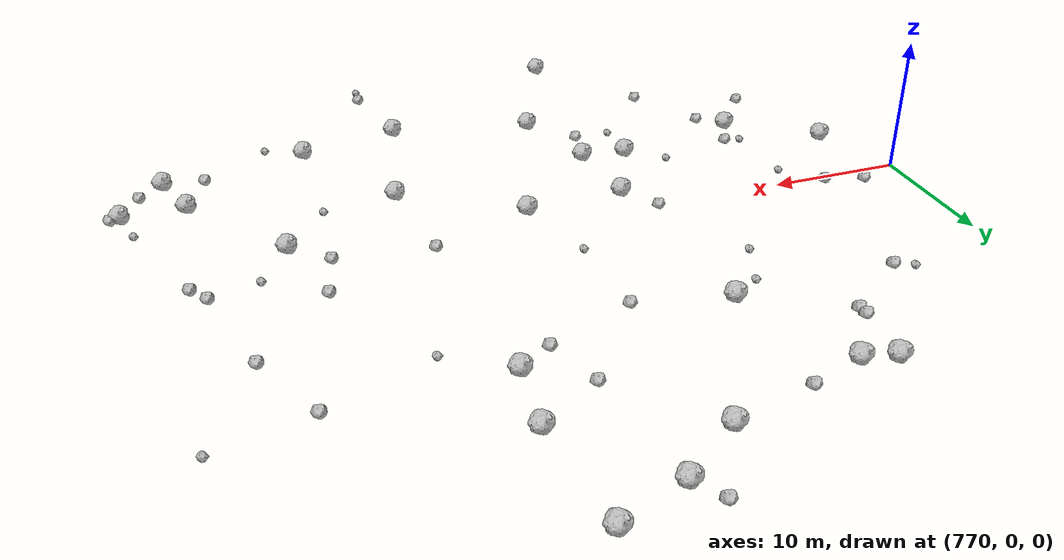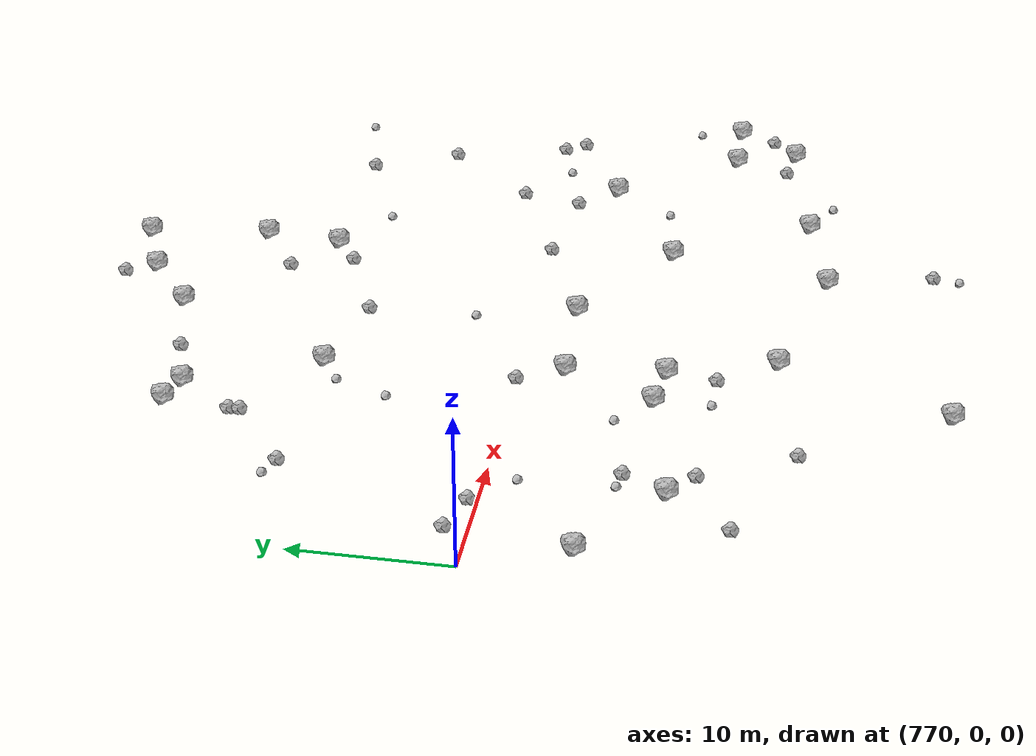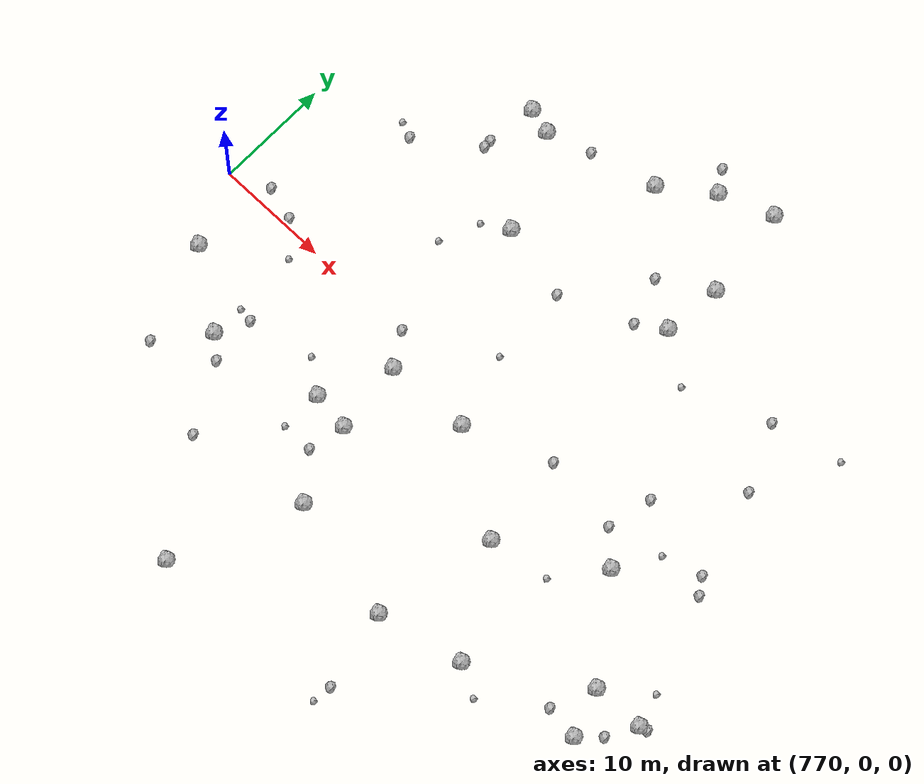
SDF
<sdf version="1.6">
 <world name="default">
  <include><uri>model://sun</uri></include>
  <model name="rock1_20_4">
   <include><uri>model://rock1</uri><pose>799.1491219017246 -2.3934621437173362 0.5 0 0 0</pose></include>
  </model>
  <model name="rock1_20_5">
   <include><uri>model://rock1</uri><pose>772.6753210773013 -6.252682493696408 0.5 0 0 0</pose></include>
  </model>
  <model name="rock1_20_6">
   <include><uri>model://rock1</uri><pose>790.2510768373835 12.614163299350565 0.5 0 0 0</pose></include>
  </model>
  <model name="rock1_20_7">
   <include><uri>model://rock1</uri><pose>822.3680527756914 -10.783972225373827 0.5 0 0 0</pose></include>
  </model>
  <model name="rock1_20_8">
   <include><uri>model://rock1</uri><pose>794.576683043204 -16.082094535818506 0.5 0 0 0</pose></include>
  </model>
  <model name="rock1_20_9">
   <include><uri>model://rock1</uri><pose>805.0141491739953 28.587296533813607 0.5 0 0 0</pose></include>
  </model>
  <model name="rock1_20_10">
   <include><uri>model://rock1</uri><pose>784.1538048964447 21.433509663834243 0.5 0 0 0</pose></include>
  </model>
  <model name="rock1_20_11">
   <include><uri>model://rock1</uri><pose>789.972738059598 -27.199220885884 0.5 0 0 0</pose></include>
  </model>
  <model name="rock1_20_12">
   <include><uri>model://rock1</uri><pose>805.4428808317751 -18.49363414099647 0.5 0 0 0</pose></include>
  </model>
  <model name="rock1_20_13">
   <include><uri>model://rock1</uri><pose>796.1400771503448 23.64920467611492 0.5 0 0 0</pose></include>
  </model>
  <model name="rock1_20_14">
   <include><uri>model://rock1</uri><pose>786.400818974506 20.85896780741563 0.5 0 0 0</pose></include>
  </model>
  <model name="rock1_20_15">
   <include><uri>model://rock1</uri><pose>788.8972647602304 -8.76240055967427 0.5 0 0 0</pose></include>
  </model>
  <model name="rock1_20_16">
   <include><uri>model://rock1</uri><pose>805.5365417819917 15.310476897684993 0.5 0 0 0</pose></include>
  </model>
  <model name="rock1_20_17">
   <include><uri>model://rock1</uri><pose>792.3042449638617 -9.175664166350373 0.5 0 0 0</pose></include>
  </model>
  <model name="rock1_20_18">
   <include><uri>model://rock1</uri><pose>813.048252260186 -16.76143798608308 0.5 0 0 0</pose></include>
  </model>
  <model name="rock1_20_19">
   <include><uri>model://rock1</uri><pose>806.0516907539798 20.452485762880833 0.5 0 0 0</pose></include>
  </model>
  <model name="rock1_20_20">
   <include><uri>model://rock1</uri><pose>791.6842016666219 -2.7735777149483063 0.5 0 0 0</pose></include>
  </model>
  <model name="rock1_20_21">
   <include><uri>model://rock1</uri><pose>826.9929776865121 -10.685162113571828 0.5 0 0 0</pose></include>
  </model>
  <model name="rock1_20_22">
   <include><uri>model://rock1</uri><pose>823.8311477560957 -14.946857969456646 0.5 0 0 0</pose></include>
  </model>
  <model name="rock1_20_23">
   <include><uri>model://rock1</uri><pose>807.656636740883 -7.7514503473701275 0.5 0 0 0</pose></include>
  </model>
  <model name="rock1_20_24">
   <include><uri>model://rock1</uri><pose>779.0131156321492 -10.786329209195454 0.5 0 0 0</pose></include>
  </model>
  <model name="rock1_20_25">
   <include><uri>model://rock1</uri><pose>800.3566935184767 26.79476758541165 0.5 0 0 0</pose></include>
  </model>
  <model name="rock1_20_26">
   <include><uri>model://rock1</uri><pose>816.2990882341488 -2.7538254271999065 0.5 0 0 0</pose></include>
  </model>
  <model name="rock2_20_0">
   <include><uri>model://rock2</uri><pose>783.9163517797299 -18.14471807687179 0.3 0 0 0</pose></include>
  </model>
  <model name="rock2_20_1">
   <include><uri>model://rock2</uri><pose>822.9361214908649 0.5692455004078987 0.3 0 0 0</pose></include>
  </model>
  <model name="rock2_20_2">
   <include><uri>model://rock2</uri><pose>806.9030221156377 -25.50506366368615 0.3 0 0 0</pose></include>
  </model>
  <model name="rock2_20_3">
   <include><uri>model://rock2</uri><pose>799.0617460093499 28.64985834732589 0.3 0 0 0</pose></include>
  </model>
  <model name="rock2_20_4">
   <include><uri>model://rock2</uri><pose>775.6805192422639 -14.884488370626393 0.3 0 0 0</pose></include>
  </model>
  <model name="rock2_20_5">
   <include><uri>model://rock2</uri><pose>790.2549667031303 22.14487358922056 0.3 0 0 0</pose></include>
  </model>
  <model name="rock2_20_6">
   <include><uri>model://rock2</uri><pose>791.6008847700604 -12.445773118336472 0.3 0 0 0</pose></include>
  </model>
  <model name="rock2_20_7">
   <include><uri>model://rock2</uri><pose>803.1512809419252 13.735484457370845 0.3 0 0 0</pose></include>
  </model>
  <model name="rock2_20_8">
   <include><uri>model://rock2</uri><pose>827.627296890441 -10.459406425023236 0.3 0 0 0</pose></include>
  </model>
  <model name="rock2_20_9">
   <include><uri>model://rock2</uri><pose>783.4890290223618 17.085213285548996 0.3 0 0 0</pose></include>
  </model>
  <model name="rock2_20_10">
   <include><uri>model://rock2</uri><pose>821.9444439284877 1.9575924068193977 0.3 0 0 0</pose></include>
  </model>
  <model name="rock2_20_11">
   <include><uri>model://rock2</uri><pose>796.8603078349934 11.169382791526289 0.3 0 0 0</pose></include>
  </model>
  <model name="rock2_20_12">
   <include><uri>model://rock2</uri><pose>819.827185892606 9.727147898308097 0.3 0 0 0</pose></include>
  </model>
  <model name="rock2_20_13">
   <include><uri>model://rock2</uri><pose>776.3212426045793 0.6132348091997777 0.3 0 0 0</pose></include>
  </model>
  <model name="rock2_20_14">
   <include><uri>model://rock2</uri><pose>806.6685747959569 0.535127500976099 0.3 0 0 0</pose></include>
  </model>
  <model name="rock2_20_15">
   <include><uri>model://rock2</uri><pose>778.4729449175533 12.65950435413918 0.3 0 0 0</pose></include>
  </model>
  <model name="rock2_20_16">
   <include><uri>model://rock2</uri><pose>817.1290391165395 15.355602198362803 0.3 0 0 0</pose></include>
  </model>
  <model name="rock2_20_17">
   <include><uri>model://rock2</uri><pose>814.5340310261396 3.727721874288136 0.3 0 0 0</pose></include>
  </model>
  <model name="rock2_20_18">
   <include><uri>model://rock2</uri><pose>801.6942113442834 17.788949881446563 0.3 0 0 0</pose></include>
  </model>
  <model name="rock2_20_19">
   <include><uri>model://rock2</uri><pose>773.3907185246103 1.4774809537102271 0.3 0 0 0</pose></include>
  </model>
  <model name="rock2_20_20">
   <include><uri>model://rock2</uri><pose>783.5302764954617 16.37088720928047 0.3 0 0 0</pose></include>
  </model>
  <model name="rock2_20_21">
   <include><uri>model://rock2</uri><pose>813.66833471278 -0.27161490991575477 0.3 0 0 0</pose></include>
  </model>
  <model name="rock2_20_22">
   <include><uri>model://rock2</uri><pose>825.543592777459 -13.235041377762531 0.3 0 0 0</pose></include>
  </model>
  <model name="rock2_20_23">
   <include><uri>model://rock2</uri><pose>780.7901027735298 -12.3356474795774 0.3 0 0 0</pose></include>
  </model>
  <model name="rock2_20_24">
   <include><uri>model://rock2</uri><pose>780.354159824715 -7.975553405307998 0.3 0 0 0</pose></include>
  </model>
  <model name="rock2_20_25">
   <include><uri>model://rock2</uri><pose>820.752693958989 -14.532296609090194 0.3 0 0 0</pose></include>
  </model>
  <model name="rock2_20_26">
   <include><uri>model://rock2</uri><pose>789.8640392247152 0.10248453407281488 0.3 0 0 0</pose></include>
  </model>
  <model name="rock3_20_0">
   <include><uri>model://rock3</uri><pose>806.7189494580853 -27.302327423662092 0.2 0 0 0</pose></include>
  </model>
  <model name="rock3_20_1">
   <include><uri>model://rock3</uri><pose>777.0858066147928 13.188229375693481 0.2 0 0 0</pose></include>
  </model>
  <model name="rock3_20_2">
   <include><uri>model://rock3</uri><pose>815.8011697068965 -18.249798667033808 0.2 0 0 0</pose></include>
  </model>
  <model name="rock3_20_3">
   <include><uri>model://rock3</uri><pose>779.0593672732733 -7.8171004408946985 0.2 0 0 0</pose></include>
  </model>
  <model name="rock3_20_4">
   <include><uri>model://rock3</uri><pose>813.0629892590833 -6.941099773435553 0.2 0 0 0</pose></include>
  </model>
  <model name="rock3_20_5">
   <include><uri>model://rock3</uri><pose>826.0869025333536 -7.8007532884169635 0.2 0 0 0</pose></include>
  </model>
  <model name="rock3_20_6">
   <include><uri>model://rock3</uri><pose>787.9710779403674 11.257094920385242 0.2 0 0 0</pose></include>
  </model>
  <model name="rock3_20_7">
   <include><uri>model://rock3</uri><pose>788.7650945966109 -12.453513549887802 0.2 0 0 0</pose></include>
  </model>
  <model name="rock3_20_8">
   <include><uri>model://rock3</uri><pose>786.126582500402 -6.706030484282927 0.2 0 0 0</pose></include>
  </model>
  <model name="rock3_20_9">
   <include><uri>model://rock3</uri><pose>818.4476444985345 0.9079823338600086 0.2 0 0 0</pose></include>
  </model>
  <model name="rock3_20_10">
   <include><uri>model://rock3</uri><pose>797.1903687428605 4.015270397737055 0.2 0 0 0</pose></include>
  </model>
  <model name="rock3_20_11">
   <include><uri>model://rock3</uri><pose>809.6832544114149 12.438799340158425 0.2 0 0 0</pose></include>
  </model>
  <model name="rock3_20_12">
   <include><uri>model://rock3</uri><pose>778.80905998998 -1.959641149226595 0.2 0 0 0</pose></include>
  </model>
  <model name="rock3_20_13">
   <include><uri>model://rock3</uri><pose>786.5652900311961 7.75103452139026 0.2 0 0 0</pose></include>
  </model>
  <model name="rock3_20_14">
   <include><uri>model://rock3</uri><pose>823.4322637128482 16.798971039747165 0.2 0 0 0</pose></include>
  </model>
 </world>
</sdf>
